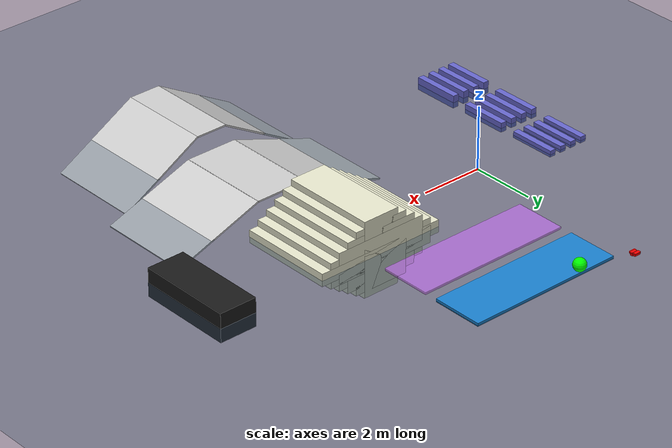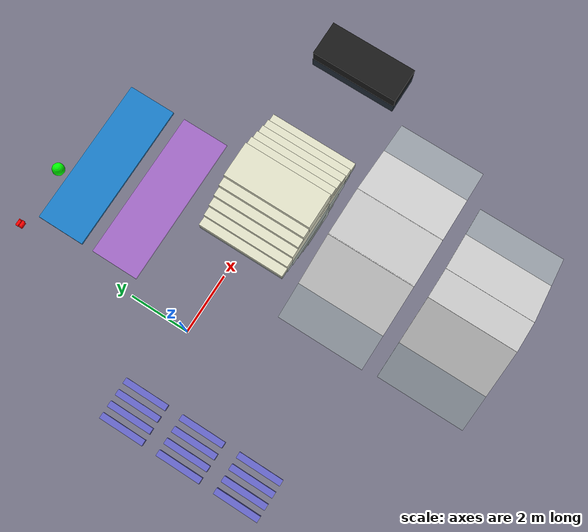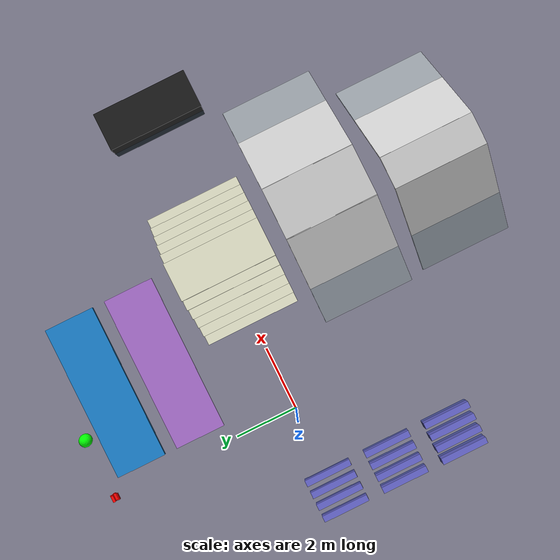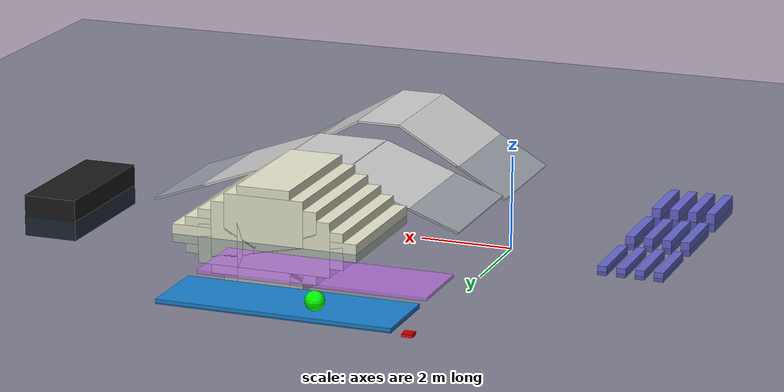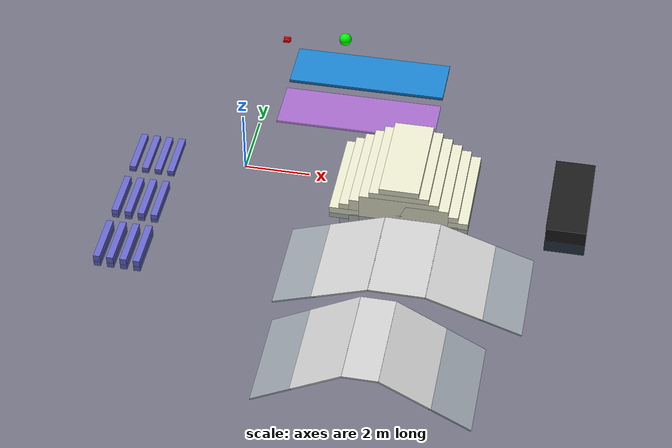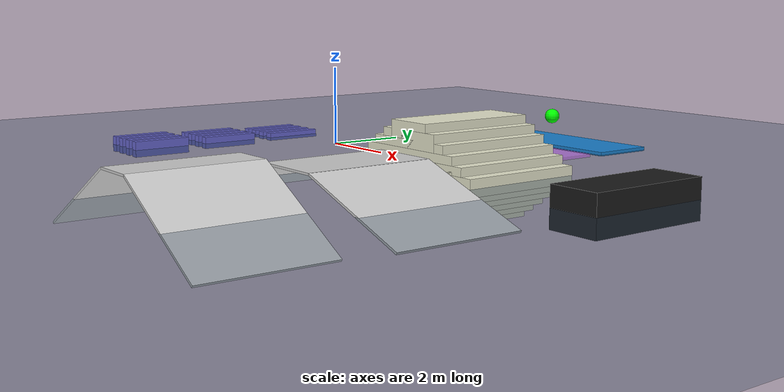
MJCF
<?xml version="1.0" encoding="utf-8"?>
<mujoco model="rbq environment">

    <!-- 통계 정보 -->
    <statistic center="0 0 0.1" extent="0.8"/>

    <!-- 시각화 설정 -->
    <visual>
        <headlight diffuse="0.6 0.6 0.6" ambient="0.3 0.3 0.3" specular="0 0 0"/>
        <rgba haze="0.15 0.25 0.35 1"/>
        <global azimuth="-130" elevation="-20"/>
    </visual>

    <!-- 에셋 정의 -->
    <asset>
        <texture type="skybox" builtin="gradient" rgb1="0.3 0.5 0.7" rgb2="0 0 0" width="512" height="3072"/>
        <texture type="2d" name="groundplane" builtin="checker" mark="edge" rgb1="0.2 0.3 0.4" rgb2="0.1 0.2 0.3"
            markrgb="0.8 0.8 0.8" width="300" height="300"/>
        <material name="groundplane" texture="groundplane" texuniform="true" texrepeat="5 5" reflectance="0.2"/>

        <!-- 계단용 텍스처 및 재질 -->
        <texture type="2d" name="stair_checker" builtin="checker" mark="edge" rgb1="0.4 0.4 0.4" rgb2="0.6 0.6 0.6"
            markrgb="0.2 0.2 0.2" width="256" height="256"/>
        <material name="stair_material" texture="stair_checker" texuniform="true" texrepeat="3 3" reflectance="0.1"/>
    </asset>

    <!-- Default class definitions -->
    <default>
        <default class="obstacle">
            <geom type="box" friction="0.8 0.8 0.8" priority="2"/>
        </default>
        <default class="slippery">
            <geom type="box" priority="2"/>
        </default>
    </default>

    <!-- 월드 바디 정의 -->
    <worldbody>
        <!-- 조명 설정 -->
        <light pos="0 0 1.5" dir="0 0 -1" directional="true"/>
        <light name="robot_light" pos="0 0 2" dir="0 0 -1" diffuse="0.7 0.7 0.7" specular="0.2 0.2 0.2"/>

        <!-- 지면 설정 -->
        <geom name="floor" size="0 0 0.1" type="plane" material="groundplane" />

        <!-- stair terrain  -->
        <geom name="stair1" class="obstacle" pos="5 0 0"       size="2.1 1.5 0.20"  quat="1.0 0 0 0" material="stair_material" rgba="0.9 0.9 0.8 1"/>
        <geom name="stair2" class="obstacle" pos="5 0 0"       size="1.8 1.5 0.40"  quat="1.0 0 0 0" material="stair_material" rgba="0.9 0.9 0.8 1"/>
        <geom name="stair3" class="obstacle" pos="5 0 0"       size="1.5 1.5 0.60"  quat="1.0 0 0 0" material="stair_material" rgba="0.9 0.9 0.8 1"/>
        <geom name="stair4" class="obstacle" pos="5 0 0"       size="1.2 1.5 0.80"  quat="1.0 0 0 0" material="stair_material" rgba="0.9 0.9 0.8 1"/>
        <geom name="stair5" class="obstacle" pos="5 0 0"       size="0.9 1.5 1.00"  quat="1.0 0 0 0" material="stair_material" rgba="0.9 0.9 0.8 1"/>
        <geom name="stair6" class="obstacle" pos="5 0 0"       size="0.6 1.5 1.20"  quat="1.0 0 0 0" material="stair_material" rgba="0.9 0.9 0.8 1"/>

        <geom name="box" class="obstacle" pos="10 0 0"       size="0.6 1.5 0.45"  quat="1.0 0 0 0" material="stair_material" rgba="0.1 0.1 0.1 1"/>

        <!-- 장애물 설정-->
        <geom name="obstacle1" class="obstacle" pos="-2.2 0 0"      size="0.1 0.75 0.1"  quat="1.0 0 0 0"    rgba="0.4 0.4 0.8 1" />
        <geom name="obstacle2" class="obstacle" pos="-2.6 0 0"      size="0.1 0.75 0.1"  quat="1.0 0 0 0"    rgba="0.4 0.4 0.8 1" />
        <geom name="obstacle3" class="obstacle" pos="-3.0 0 0"      size="0.1 0.75 0.1"  quat="1.0 0 0 0"    rgba="0.4 0.4 0.8 1" />
        <geom name="obstacle4" class="obstacle" pos="-3.4 0 0"      size="0.1 0.75 0.1"  quat="1.0 0 0 0"    rgba="0.4 0.4 0.8 1" />
        <geom name="obstacle5" class="obstacle" pos="-2.2 -2 0"     size="0.1 0.75 0.15" quat="1.0 0 0 0"    rgba="0.4 0.4 0.8 1" />
        <geom name="obstacle6" class="obstacle" pos="-2.6 -2 0"     size="0.1 0.75 0.15" quat="1.0 0 0 0"    rgba="0.4 0.4 0.8 1" />
        <geom name="obstacle7" class="obstacle" pos="-3.0 -2 0"     size="0.1 0.75 0.15" quat="1.0 0 0 0"    rgba="0.4 0.4 0.8 1" />
        <geom name="obstacle8" class="obstacle" pos="-3.4 -2 0"     size="0.1 0.75 0.15" quat="1.0 0 0 0"    rgba="0.4 0.4 0.8 1" />
        <geom name="obstacle9" class="obstacle" pos="-2.2 -4 0"     size="0.1 0.75 0.2"  quat="1.0 0 0 0"    rgba="0.4 0.4 0.8 1" />
        <geom name="obstacle10" class="obstacle" pos="-2.6 -4 0"     size="0.1 0.75 0.2"  quat="1.0 0 0 0"    rgba="0.4 0.4 0.8 1" />
        <geom name="obstacle11" class="obstacle" pos="-3.0 -4 0"     size="0.1 0.75 0.2"  quat="1.0 0 0 0"    rgba="0.4 0.4 0.8 1" />
        <geom name="obstacle12" class="obstacle" pos="-3.4 -4 0"     size="0.1 0.75 0.2"  quat="1.0 0 0 0"    rgba="0.4 0.4 0.8 1" />

        <!-- 20 degree slope terrain -->
        <geom name="slope20_1" class="obstacle" pos="3.3 -3.5 0.05" size="1.5 1.5 0.025" quat="0.9848 0 -0.1736 0" rgba="0.8 0.8 0.8 1"/>
        <geom name="slope20_2" class="obstacle" pos="5.52 -3.5 0.56" size="0.84 1.5 0.025" quat="1 0 0 0" rgba="0.8 0.8 0.8 1"/>
        <geom name="slope20_3" class="obstacle" pos="7.747 -3.5 0.05" size="1.5 1.5 0.025" quat="0.9848 0 0.1736 0" rgba="0.8 0.8 0.8 1"/>

        <!-- 30 degree slope terrain -->
        <geom name="slope30_1" class="obstacle" pos="3.3 -7 0.05" size="1.5 1.5 0.025" quat="0.9659 0 -0.2588 0" rgba="0.8 0.8 0.8 1"/>
        <geom name="slope30_2" class="obstacle" pos="5.1 -7 0.795" size="0.51 1.5 0.025" quat="1 0 0 0" rgba="0.8 0.8 0.8 1"/>
        <geom name="slope30_3" class="obstacle" pos="6.898 -7 0.05" size="1.5 1.5 0.025" quat="0.9659 0 0.2588 0" rgba="0.8 0.8 0.8 1"/>

        <!-- slipery terrain -->
        <geom name="slippery1" class="slippery" pos="3 3 0.005"  quat="1 0 0 0" size="2.5 0.8 0.05" friction="0.2 0.3 0.1" rgba="0.7 0.4 0.9 0.7"/>
        <geom name="slippery2" class="slippery" pos="3 5 0.005"  quat="1 0 0 0" size="2.5 0.8 0.05" friction="0.1 0.1 0.1" rgba="0.1 0.5 0.8 1"/>

        <!-- movable obstacles -->
        <body pos="2 6 0.5">
            <joint type="free"/>
            <geom type="sphere" size="0.2" rgba="0 1 0 1" mass="0.5"/>
        </body>

       <body pos="0.007 6.170 0.114">
            <joint type="free"/>
            <geom type="box" size="0.1 0.04 0.03" rgba="1 0 0 1" mass="1.0"/>
        </body>

        <body pos="0.023 6.162 0.104">
            <joint type="free"/>
            <geom type="box" size="0.1 0.04 0.03" rgba="1 0 0 1" mass="1.0"/>
        </body>

        <body pos="0.011 6.050 0.112">
            <joint type="free"/>
            <geom type="box" size="0.1 0.04 0.03" rgba="1 0 0 1" mass="1.0"/>
        </body>

        <body pos="0.039 6.109 0.085">
            <joint type="free"/>
            <geom type="box" size="0.1 0.04 0.03" rgba="1 0 0 1" mass="1.0"/>
        </body>

        <body pos="0.001 6.183 0.116">
            <joint type="free"/>
            <geom type="box" size="0.1 0.04 0.03" rgba="1 0 0 1" mass="1.0"/>
        </body>

        <body pos="0.006 6.034 0.105">
            <joint type="free"/>
            <geom type="box" size="0.1 0.04 0.03" rgba="1 0 0 1" mass="1.0"/>
        </body>

        <body pos="0.033 6.075 0.114">
            <joint type="free"/>
            <geom type="box" size="0.1 0.04 0.03" rgba="1 0 0 1" mass="1.0"/>
        </body>

        <body pos="0.025 6.193 0.102">
            <joint type="free"/>
            <geom type="box" size="0.1 0.04 0.03" rgba="1 0 0 1" mass="1.0"/>
        </body>

        <body pos="0.014 6.078 0.086">
            <joint type="free"/>
            <geom type="box" size="0.1 0.04 0.03" rgba="1 0 0 1" mass="1.0"/>
        </body>

        <body pos="0.009 6.114 0.084">
            <joint type="free"/>
            <geom type="box" size="0.1 0.04 0.03" rgba="1 0 0 1" mass="1.0"/>
        </body>

    </worldbody>

    <contact>
        <!-- Floor contact -->
        <pair geom1="RR" geom2="floor"/>
        <pair geom1="RL" geom2="floor"/>
        <pair geom1="FR" geom2="floor"/>
        <pair geom1="FL" geom2="floor"/>

        <!-- Obstacle contacts -->
        <pair geom1="RR" geom2="obstacle1"/>
        <pair geom1="RL" geom2="obstacle1"/>
        <pair geom1="FR" geom2="obstacle1"/>
        <pair geom1="FL" geom2="obstacle1"/>
        <pair geom1="RR" geom2="obstacle2"/>
        <pair geom1="RL" geom2="obstacle2"/>
        <pair geom1="FR" geom2="obstacle2"/>
        <pair geom1="FL" geom2="obstacle2"/>
        <pair geom1="RR" geom2="obstacle3"/>
        <pair geom1="RL" geom2="obstacle3"/>
        <pair geom1="FR" geom2="obstacle3"/>
        <pair geom1="FL" geom2="obstacle3"/>
        <pair geom1="RR" geom2="obstacle4"/>
        <pair geom1="RL" geom2="obstacle4"/>
        <pair geom1="FR" geom2="obstacle4"/>
        <pair geom1="FL" geom2="obstacle4"/>
        <pair geom1="RR" geom2="obstacle5"/>
        <pair geom1="RL" geom2="obstacle5"/>
        <pair geom1="FR" geom2="obstacle5"/>
        <pair geom1="FL" geom2="obstacle5"/>
        <pair geom1="RR" geom2="obstacle6"/>
        <pair geom1="RL" geom2="obstacle6"/>
        <pair geom1="FR" geom2="obstacle6"/>
        <pair geom1="FL" geom2="obstacle6"/>
        <pair geom1="RR" geom2="obstacle7"/>
        <pair geom1="RL" geom2="obstacle7"/>
        <pair geom1="FR" geom2="obstacle7"/>
        <pair geom1="FL" geom2="obstacle7"/>
        <pair geom1="RR" geom2="obstacle8"/>
        <pair geom1="RL" geom2="obstacle8"/>
        <pair geom1="FR" geom2="obstacle8"/>
        <pair geom1="FL" geom2="obstacle8"/>
        <pair geom1="RR" geom2="obstacle9"/>
        <pair geom1="RL" geom2="obstacle9"/>
        <pair geom1="FR" geom2="obstacle9"/>
        <pair geom1="FL" geom2="obstacle9"/>
        <pair geom1="RR" geom2="obstacle10"/>
        <pair geom1="RL" geom2="obstacle10"/>
        <pair geom1="FR" geom2="obstacle10"/>
        <pair geom1="FL" geom2="obstacle10"/>
        <pair geom1="RR" geom2="obstacle11"/>
        <pair geom1="RL" geom2="obstacle11"/>
        <pair geom1="FR" geom2="obstacle11"/>
        <pair geom1="FL" geom2="obstacle11"/>
        <pair geom1="RR" geom2="obstacle12"/>
        <pair geom1="RL" geom2="obstacle12"/>
        <pair geom1="FR" geom2="obstacle12"/>
        <pair geom1="FL" geom2="obstacle12"/>

        <!-- Stair contacts -->
        <pair geom1="RR" geom2="stair1"/>
        <pair geom1="RL" geom2="stair1"/>
        <pair geom1="FR" geom2="stair1"/>
        <pair geom1="FL" geom2="stair1"/>
        <pair geom1="RR" geom2="stair2"/>
        <pair geom1="RL" geom2="stair2"/>
        <pair geom1="FR" geom2="stair2"/>
        <pair geom1="FL" geom2="stair2"/>
        <pair geom1="RR" geom2="stair3"/>
        <pair geom1="RL" geom2="stair3"/>
        <pair geom1="FR" geom2="stair3"/>
        <pair geom1="FL" geom2="stair3"/>
        <pair geom1="RR" geom2="stair4"/>
        <pair geom1="RL" geom2="stair4"/>
        <pair geom1="FR" geom2="stair4"/>
        <pair geom1="FL" geom2="stair4"/>
        <pair geom1="RR" geom2="stair5"/>
        <pair geom1="RL" geom2="stair5"/>
        <pair geom1="FR" geom2="stair5"/>
        <pair geom1="FL" geom2="stair5"/>
        <pair geom1="RR" geom2="stair6"/>
        <pair geom1="RL" geom2="stair6"/>
        <pair geom1="FR" geom2="stair6"/>
        <pair geom1="FL" geom2="stair6"/>

        <!-- Slope contacts -->
        <pair geom1="RR" geom2="slope20_1"/>
        <pair geom1="RL" geom2="slope20_1"/>
        <pair geom1="FR" geom2="slope20_1"/>
        <pair geom1="FL" geom2="slope20_1"/>
        <pair geom1="RR" geom2="slope20_2"/>
        <pair geom1="RL" geom2="slope20_2"/>
        <pair geom1="FR" geom2="slope20_2"/>
        <pair geom1="FL" geom2="slope20_2"/>
        <pair geom1="RR" geom2="slope20_3"/>
        <pair geom1="RL" geom2="slope20_3"/>
        <pair geom1="FR" geom2="slope20_3"/>
        <pair geom1="FL" geom2="slope20_3"/>
        <pair geom1="RR" geom2="slope30_1"/>
        <pair geom1="RL" geom2="slope30_1"/>
        <pair geom1="FR" geom2="slope30_1"/>
        <pair geom1="FL" geom2="slope30_1"/>
        <pair geom1="RR" geom2="slope30_2"/>
        <pair geom1="RL" geom2="slope30_2"/>
        <pair geom1="FR" geom2="slope30_2"/>
        <pair geom1="FL" geom2="slope30_2"/>
        <pair geom1="RR" geom2="slope30_3"/>
        <pair geom1="RL" geom2="slope30_3"/>
        <pair geom1="FR" geom2="slope30_3"/>
        <pair geom1="FL" geom2="slope30_3"/>
    </contact>

</mujoco>
